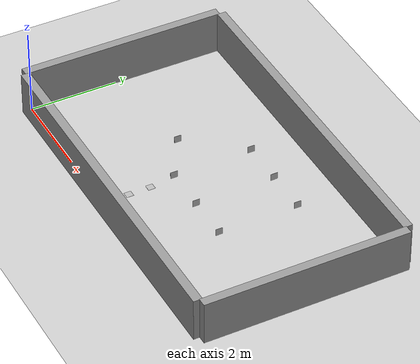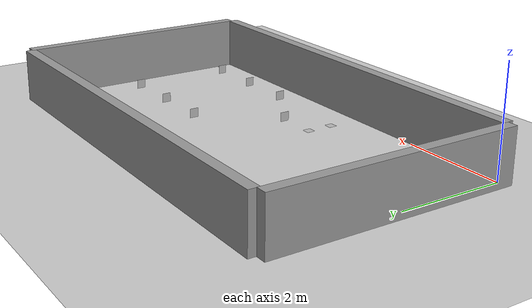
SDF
<sdf version="1.6">
 <world name="default">
  <model name="ground_plane">
   <static>1</static>
   <link name="link">
    <collision name="collision">
     <geometry><plane><normal>0 0 1</normal><size>100 100</size></plane></geometry>
     <surface><friction><ode><mu>100</mu><mu2>50</mu2></ode></friction></surface>
    </collision>
    <visual name="visual">
     <cast_shadows>0</cast_shadows>
     <geometry><plane><normal>0 0 1</normal><size>100 100</size></plane></geometry>
     <material>
      <script><uri>file://media/materials/scripts/gazebo.material</uri><name>Gazebo/Grey</name></script>
     </material>
    </visual>
   </link>
  </model>
  <light name="sun" type="directional">
   <pose>0 0 10 0 -0 0</pose>
   <diffuse>0.8 0.8 0.8 1</diffuse>
   <specular>0.1 0.1 0.1 1</specular>
   <attenuation>
    <range>1000</range>
    <constant>0.9</constant>
    <linear>0.01</linear>
    <quadratic>0.001</quadratic>
   </attenuation>
   <direction>-0.5 0.5 -1</direction>
  </light>
  <model name="Tag2_2">
   <pose>4 1.4 0.5 0 -0 1.57</pose>
   <static>1</static>
   <link name="link">
    <pose>0 0 0.1 0 -0 0</pose>
    <collision name="collision"><geometry><box><size>0.1615 0.001 0.1615</size></box></geometry></collision>
    <visual name="visual">
     <cast_shadows>0</cast_shadows>
     <geometry><box><size>0.1615 0.001 0.1615</size></box></geometry>
     <material>
      <script>
       <uri>model://Tag0/materials/scripts</uri>
       <uri>model://Tag0/materials/textures</uri>
       <name>vrc/Tag0</name>
      </script>
     </material>
    </visual>
   </link>
  </model>
  <gravity>0 0 -9.8</gravity>
  <magnetic_field>6e-06 2.3e-05 -4.2e-05</magnetic_field>
  <atmosphere type="adiabatic"/>
  <physics name="default_physics" default="0" type="ode">
   <max_step_size>0.001</max_step_size>
   <real_time_factor>1</real_time_factor>
   <real_time_update_rate>1000</real_time_update_rate>
  </physics>
  <scene><ambient>0.4 0.4 0.4 1</ambient><background>0.7 0.7 0.7 1</background><shadows>1</shadows></scene>
  <spherical_coordinates>
   <surface_model>EARTH_WGS84</surface_model>
   <latitude_deg>0</latitude_deg>
   <longitude_deg>0</longitude_deg>
   <elevation>0</elevation>
   <heading_deg>0</heading_deg>
  </spherical_coordinates>
  <model name="Tag1_1">
   <static>1</static>
   <link name="link">
    <pose>0 0 0.1 0 -0 0</pose>
    <collision name="collision"><geometry><box><size>0.1615 0.001 0.1615</size></box></geometry></collision>
    <visual name="visual">
     <cast_shadows>0</cast_shadows>
     <geometry><box><size>0.1615 0.001 0.1615</size></box></geometry>
     <material>
      <script>
       <uri>model://Tag0/materials/scripts</uri>
       <uri>model://Tag0/materials/textures</uri>
       <name>vrc/Tag0</name>
      </script>
     </material>
    </visual>
   </link>
   <pose>6 1.4 0.5 0 -0 1.57</pose>
  </model>
  <model name="Tag4_2">
   <static>1</static>
   <link name="link">
    <pose>0 0 0.1 0 -0 0</pose>
    <collision name="collision"><geometry><box><size>0.1615 0.001 0.1615</size></box></geometry></collision>
    <visual name="visual">
     <cast_shadows>0</cast_shadows>
     <geometry><box><size>0.1615 0.001 0.1615</size></box></geometry>
     <material>
      <script>
       <uri>model://Tag0/materials/scripts</uri>
       <uri>model://Tag0/materials/textures</uri>
       <name>vrc/Tag0</name>
      </script>
     </material>
    </visual>
   </link>
   <pose>4 3.2 0.5 0 -0 1.57</pose>
  </model>
  <model name="Tag5_1">
   <static>1</static>
   <link name="link">
    <pose>0 0 0.1 0 -0 0</pose>
    <collision name="collision"><geometry><box><size>0.1615 0.001 0.1615</size></box></geometry></collision>
    <visual name="visual">
     <cast_shadows>0</cast_shadows>
     <geometry><box><size>0.1615 0.001 0.1615</size></box></geometry>
     <material>
      <script>
       <uri>model://Tag0/materials/scripts</uri>
       <uri>model://Tag0/materials/textures</uri>
       <name>vrc/Tag0</name>
      </script>
     </material>
    </visual>
   </link>
   <pose>6 3.2 0.5 0 -0 1.57</pose>
  </model>
  <model name="Tag3_1">
   <static>1</static>
   <link name="link">
    <pose>0 0 0.1 0 -0 0</pose>
    <collision name="collision"><geometry><box><size>0.1615 0.001 0.1615</size></box></geometry></collision>
    <visual name="visual">
     <cast_shadows>0</cast_shadows>
     <geometry><box><size>0.1615 0.001 0.1615</size></box></geometry>
     <material>
      <script>
       <uri>model://Tag0/materials/scripts</uri>
       <uri>model://Tag0/materials/textures</uri>
       <name>vrc/Tag0</name>
      </script>
     </material>
    </visual>
   </link>
   <pose>3 2 0.5 0 -0 1.57</pose>
  </model>
  <model name="Tag2_1">
   <static>1</static>
   <link name="link">
    <pose>0 0 0.1 0 -0 0</pose>
    <collision name="collision"><geometry><box><size>0.1615 0.001 0.1615</size></box></geometry></collision>
    <visual name="visual">
     <cast_shadows>0</cast_shadows>
     <geometry><box><size>0.1615 0.001 0.1615</size></box></geometry>
     <material>
      <script>
       <uri>model://Tag0/materials/scripts</uri>
       <uri>model://Tag0/materials/textures</uri>
       <name>vrc/Tag0</name>
      </script>
     </material>
    </visual>
   </link>
   <pose>5 1.4 0.5 0 0 -1.57</pose>
  </model>
  <model name="Tag4_1">
   <static>1</static>
   <link name="link">
    <pose>0 0 0.1 0 -0 0</pose>
    <collision name="collision"><geometry><box><size>0.1615 0.001 0.1615</size></box></geometry></collision>
    <visual name="visual">
     <cast_shadows>0</cast_shadows>
     <geometry><box><size>0.1615 0.001 0.1615</size></box></geometry>
     <material>
      <script>
       <uri>model://Tag0/materials/scripts</uri>
       <uri>model://Tag0/materials/textures</uri>
       <name>vrc/Tag0</name>
      </script>
     </material>
    </visual>
   </link>
   <pose>5 3.2 0.5 0 0 -1.57</pose>
  </model>
  <model name="Local1">
   <static>1</static>
   <link name="link">
    <pose>0 0 0.1 0 -0 0</pose>
    <collision name="collision"><geometry><box><size>0.1615 0.001 0.1615</size></box></geometry></collision>
    <visual name="visual">
     <cast_shadows>0</cast_shadows>
     <geometry><box><size>0.1615 0.001 0.1615</size></box></geometry>
     <material>
      <script>
       <uri>model://Tag0/materials/scripts</uri>
       <uri>model://Tag0/materials/textures</uri>
       <name>vrc/Tag0</name>
      </script>
     </material>
    </visual>
   </link>
   <pose>3.5 0.5 0.01 -1.57 0 0</pose>
  </model>
  <model name="Local2">
   <static>1</static>
   <link name="link">
    <pose>0 0 0.1 0 -0 0</pose>
    <collision name="collision"><geometry><box><size>0.1615 0.001 0.1615</size></box></geometry></collision>
    <visual name="visual">
     <cast_shadows>0</cast_shadows>
     <geometry><box><size>0.1615 0.001 0.1615</size></box></geometry>
     <material>
      <script>
       <uri>model://Tag0/materials/scripts</uri>
       <uri>model://Tag0/materials/textures</uri>
       <name>vrc/Tag0</name>
      </script>
     </material>
    </visual>
   </link>
   <pose>3.5 1 0.01 -1.57 0 0</pose>
  </model>
  <model name="wall1">
   <pose>3.99412 -0.10558 0.499996 -1e-06 9e-06 5.8e-05</pose>
   <link name="link">
    <inertial>
     <mass>1</mass>
     <inertia>
      <ixx>0.166667</ixx>
      <ixy>0</ixy>
      <ixz>0</ixz>
      <iyy>0.166667</iyy>
      <iyz>0</iyz>
      <izz>0.166667</izz>
     </inertia>
    </inertial>
    <collision name="collision"><geometry><box><size>1 0.253488 1</size></box></geometry></collision>
    <visual name="visual">
     <geometry><box><size>8 0.202792 1</size></box></geometry>
     <material>
      <script><name>Gazebo/Grey</name><uri>file://media/materials/scripts/gazebo.material</uri></script>
     </material>
    </visual>
   </link>
  </model>
  <model name="wall2">
   <pose>4.00058 4.6 0.5 1e-06 -1e-06 0</pose>
   <link name="link">
    <inertial>
     <mass>1</mass>
     <inertia>
      <ixx>0.166667</ixx>
      <ixy>0</ixy>
      <ixz>0</ixz>
      <iyy>0.166667</iyy>
      <iyz>0</iyz>
      <izz>0.166667</izz>
     </inertia>
    </inertial>
    <collision name="collision"><geometry><box><size>1 0.253489 1</size></box></geometry></collision>
    <visual name="visual">
     <geometry><box><size>8 0.202792 1</size></box></geometry>
     <material>
      <script><name>Gazebo/Grey</name><uri>file://media/materials/scripts/gazebo.material</uri></script>
     </material>
    </visual>
   </link>
  </model>
  <model name="wall4">
   <pose>-0.094945 2.22836 0.499998 2e-06 -5e-06 1.57019</pose>
   <link name="link">
    <inertial>
     <mass>1</mass>
     <inertia>
      <ixx>0.166667</ixx>
      <ixy>0</ixy>
      <ixz>0</ixz>
      <iyy>0.166667</iyy>
      <iyz>0</iyz>
      <izz>0.166667</izz>
     </inertia>
    </inertial>
    <collision name="collision"><geometry><box><size>0.582354 0.253489 1</size></box></geometry></collision>
    <visual name="visual">
     <geometry><box><size>4.65884 0.202792 1</size></box></geometry>
     <material>
      <script><name>Gazebo/Grey</name><uri>file://media/materials/scripts/gazebo.material</uri></script>
     </material>
    </visual>
   </link>
  </model>
  <model name="wall3">
   <pose>8.08033 2.24774 0.499998 -2e-06 -5e-06 1.57005</pose>
   <link name="link">
    <inertial>
     <mass>1</mass>
     <inertia>
      <ixx>0.166667</ixx>
      <ixy>0</ixy>
      <ixz>0</ixz>
      <iyy>0.166667</iyy>
      <iyz>0</iyz>
      <izz>0.166667</izz>
     </inertia>
    </inertial>
    <collision name="collision"><geometry><box><size>0.579982 0.253489 1</size></box></geometry></collision>
    <visual name="visual">
     <geometry><box><size>4.63986 0.202792 1</size></box></geometry>
     <material>
      <script><name>Gazebo/Grey</name><uri>file://media/materials/scripts/gazebo.material</uri></script>
     </material>
    </visual>
   </link>
  </model>
 </world>
</sdf>
